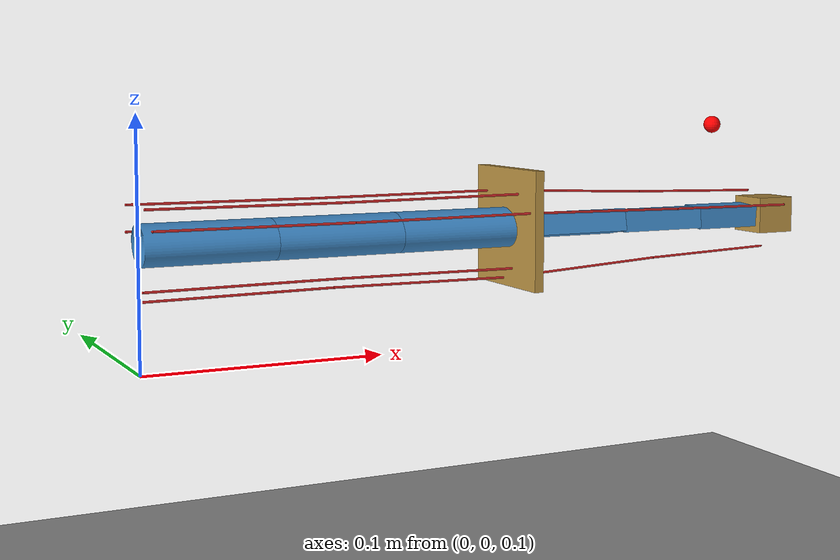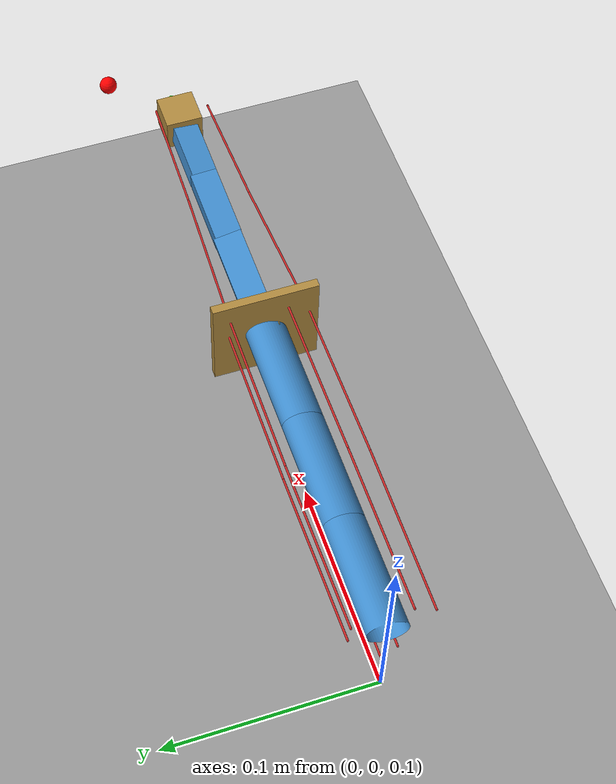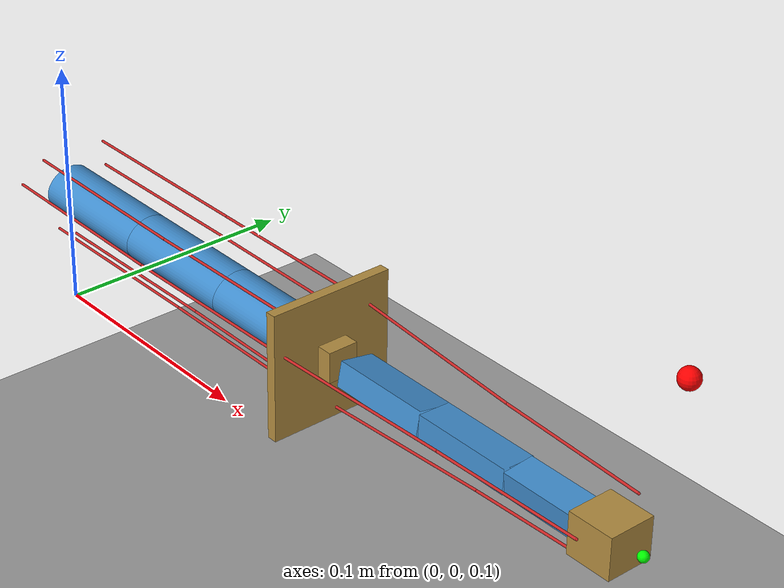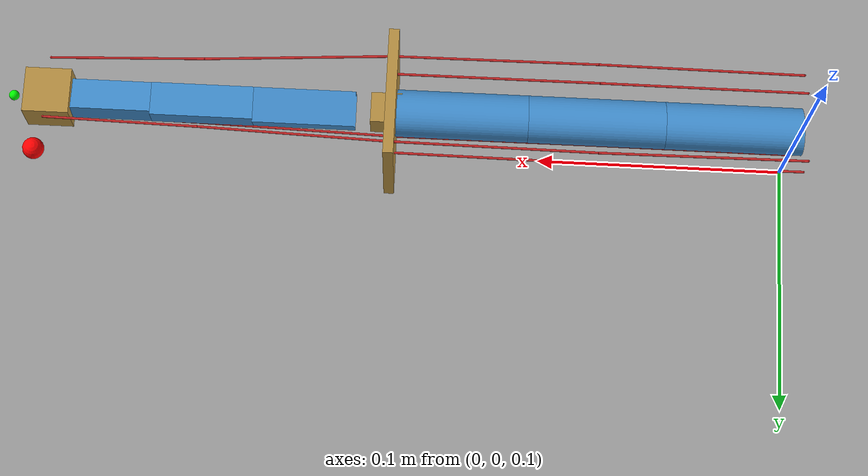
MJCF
<?xml version='1.0' encoding='utf-8'?>
<mujoco model="serial_tendon_family"><compiler angle="radian" autolimits="true" /><option timestep="0.0005" gravity="0 0 -9.8100000000000005" integrator="implicitfast" /><default><joint limited="false" /><geom contype="1" conaffinity="2" friction="0 0 0" /></default><asset><mesh name="near_cell_0_section" vertex="0 -0.01 2.4175425728033171e-18 0 -0.0099144486137381048 -0.001044209537760411 0 -0.0096592582628906853 -0.0020705523608201648 0 -0.0092387953251128682 -0.0030614674589207165 0 -0.0086602540378443883 -0.0039999999999999966 0 -0.0079335334029123541 -0.0048700914320697628 0 -0.0070710678118654779 -0.0056568542494923792 0 -0.0060876142900872076 -0.0063468267223298807 0 -0.0050000000000000018 -0.006928203230275507 0 -0.0038268343236509002 -0.0073910362600902932 0 -0.0025881904510252113 -0.0077274066103125453 0 -0.0013052619222005189 -0.0079315588909904828 0 -2.3207556918032139e-18 -0.0080000000000000002 0 0.0013052619222005124 -0.0079315588909904845 0 0.0025881904510252048 -0.0077274066103125471 0 0.0038268343236508942 -0.0073910362600902958 0 0.0049999999999999958 -0.0069282032302755113 0 0.0060876142900872024 -0.0063468267223298841 0 0.0070710678118654727 -0.0056568542494923818 0 0.0079335334029123506 -0.0048700914320697689 0 0.0086602540378443848 -0.0040000000000000044 0 0.0092387953251128682 -0.0030614674589207209 0 0.0096592582628906801 -0.0020705523608201704 0 0.0099144486137381048 -0.0010442095377604184 0 0.01 -3.2323185216375012e-18 0 0.0099144486137381048 0.0010442095377604095 0 0.0096592582628906836 0.0020705523608201613 0 0.00923879532511287 0.0030614674589207122 0 0.00866025403784439 0.0039999999999999949 0 0.0079335334029123541 0.0048700914320697619 0 0.0070710678118654797 0.0056568542494923758 0 0.0060876142900872102 0.0063468267223298781 0 0.0050000000000000062 0.0069282032302755078 0 0.003826834323650905 0.0073910362600902915 0 0.0025881904510252165 0.0077274066103125436 0 0.0013052619222005269 0.0079315588909904828 0 3.6217982987858192e-18 0.0080000000000000002 0 -0.0013052619222005107 0.0079315588909904845 0 -0.0025881904510252013 0.0077274066103125488 0 -0.0038268343236508911 0.0073910362600902967 0 -0.0049999999999999914 0.006928203230275513 0 -0.0060876142900871981 0.0063468267223298876 0 -0.0070710678118654719 0.0056568542494923836 0 -0.0079335334029123471 0.0048700914320697697 0 -0.0086602540378443848 0.0040000000000000053 0 -0.0092387953251128647 0.0030614674589207252 0 -0.0096592582628906819 0.0020705523608201748 0 -0.0099144486137381013 0.0010442095377604223 0.053333333333333337 -0.01 2.4175425728033171e-18 0.053333333333333337 -0.0099144486137381048 -0.001044209537760411 0.053333333333333337 -0.0096592582628906853 -0.0020705523608201648 0.053333333333333337 -0.0092387953251128682 -0.0030614674589207165 0.053333333333333337 -0.0086602540378443883 -0.0039999999999999966 0.053333333333333337 -0.0079335334029123541 -0.0048700914320697628 0.053333333333333337 -0.0070710678118654779 -0.0056568542494923792 0.053333333333333337 -0.0060876142900872076 -0.0063468267223298807 0.053333333333333337 -0.0050000000000000018 -0.006928203230275507 0.053333333333333337 -0.0038268343236509002 -0.0073910362600902932 0.053333333333333337 -0.0025881904510252113 -0.0077274066103125453 0.053333333333333337 -0.0013052619222005189 -0.0079315588909904828 0.053333333333333337 -2.3207556918032139e-18 -0.0080000000000000002 0.053333333333333337 0.0013052619222005124 -0.0079315588909904845 0.053333333333333337 0.0025881904510252048 -0.0077274066103125471 0.053333333333333337 0.0038268343236508942 -0.0073910362600902958 0.053333333333333337 0.0049999999999999958 -0.0069282032302755113 0.053333333333333337 0.0060876142900872024 -0.0063468267223298841 0.053333333333333337 0.0070710678118654727 -0.0056568542494923818 0.053333333333333337 0.0079335334029123506 -0.0048700914320697689 0.053333333333333337 0.0086602540378443848 -0.0040000000000000044 0.053333333333333337 0.0092387953251128682 -0.0030614674589207209 0.053333333333333337 0.0096592582628906801 -0.0020705523608201704 0.053333333333333337 0.0099144486137381048 -0.0010442095377604184 0.053333333333333337 0.01 -3.2323185216375012e-18 0.053333333333333337 0.0099144486137381048 0.0010442095377604095 0.053333333333333337 0.0096592582628906836 0.0020705523608201613 0.053333333333333337 0.00923879532511287 0.0030614674589207122 0.053333333333333337 0.00866025403784439 0.0039999999999999949 0.053333333333333337 0.0079335334029123541 0.0048700914320697619 0.053333333333333337 0.0070710678118654797 0.0056568542494923758 0.053333333333333337 0.0060876142900872102 0.0063468267223298781 0.053333333333333337 0.0050000000000000062 0.0069282032302755078 0.053333333333333337 0.003826834323650905 0.0073910362600902915 0.053333333333333337 0.0025881904510252165 0.0077274066103125436 0.053333333333333337 0.0013052619222005269 0.0079315588909904828 0.053333333333333337 3.6217982987858192e-18 0.0080000000000000002 0.053333333333333337 -0.0013052619222005107 0.0079315588909904845 0.053333333333333337 -0.0025881904510252013 0.0077274066103125488 0.053333333333333337 -0.0038268343236508911 0.0073910362600902967 0.053333333333333337 -0.0049999999999999914 0.006928203230275513 0.053333333333333337 -0.0060876142900871981 0.0063468267223298876 0.053333333333333337 -0.0070710678118654719 0.0056568542494923836 0.053333333333333337 -0.0079335334029123471 0.0048700914320697697 0.053333333333333337 -0.0086602540378443848 0.0040000000000000053 0.053333333333333337 -0.0092387953251128647 0.0030614674589207252 0.053333333333333337 -0.0096592582628906819 0.0020705523608201748 0.053333333333333337 -0.0099144486137381013 0.0010442095377604223" face="0 1 49 0 49 48 1 2 50 1 50 49 2 3 51 2 51 50 3 4 52 3 52 51 4 5 53 4 53 52 5 6 54 5 54 53 6 7 55 6 55 54 7 8 56 7 56 55 8 9 57 8 57 56 9 10 58 9 58 57 10 11 59 10 59 58 11 12 60 11 60 59 12 13 61 12 61 60 13 14 62 13 62 61 14 15 63 14 63 62 15 16 64 15 64 63 16 17 65 16 65 64 17 18 66 17 66 65 18 19 67 18 67 66 19 20 68 19 68 67 20 21 69 20 69 68 21 22 70 21 70 69 22 23 71 22 71 70 23 24 72 23 72 71 24 25 73 24 73 72 25 26 74 25 74 73 26 27 75 26 75 74 27 28 76 27 76 75 28 29 77 28 77 76 29 30 78 29 78 77 30 31 79 30 79 78 31 32 80 31 80 79 32 33 81 32 81 80 33 34 82 33 82 81 34 35 83 34 83 82 35 36 84 35 84 83 36 37 85 36 85 84 37 38 86 37 86 85 38 39 87 38 87 86 39 40 88 39 88 87 40 41 89 40 89 88 41 42 90 41 90 89 42 43 91 42 91 90 43 44 92 43 92 91 44 45 93 44 93 92 45 46 94 45 94 93 46 47 95 46 95 94 47 0 48 47 48 95" /><mesh name="near_cell_1_section" vertex="0 -0.01 2.4175425728033171e-18 0 -0.0099144486137381048 -0.001044209537760411 0 -0.0096592582628906853 -0.0020705523608201648 0 -0.0092387953251128682 -0.0030614674589207165 0 -0.0086602540378443883 -0.0039999999999999966 0 -0.0079335334029123541 -0.0048700914320697628 0 -0.0070710678118654779 -0.0056568542494923792 0 -0.0060876142900872076 -0.0063468267223298807 0 -0.0050000000000000018 -0.006928203230275507 0 -0.0038268343236509002 -0.0073910362600902932 0 -0.0025881904510252113 -0.0077274066103125453 0 -0.0013052619222005189 -0.0079315588909904828 0 -2.3207556918032139e-18 -0.0080000000000000002 0 0.0013052619222005124 -0.0079315588909904845 0 0.0025881904510252048 -0.0077274066103125471 0 0.0038268343236508942 -0.0073910362600902958 0 0.0049999999999999958 -0.0069282032302755113 0 0.0060876142900872024 -0.0063468267223298841 0 0.0070710678118654727 -0.0056568542494923818 0 0.0079335334029123506 -0.0048700914320697689 0 0.0086602540378443848 -0.0040000000000000044 0 0.0092387953251128682 -0.0030614674589207209 0 0.0096592582628906801 -0.0020705523608201704 0 0.0099144486137381048 -0.0010442095377604184 0 0.01 -3.2323185216375012e-18 0 0.0099144486137381048 0.0010442095377604095 0 0.0096592582628906836 0.0020705523608201613 0 0.00923879532511287 0.0030614674589207122 0 0.00866025403784439 0.0039999999999999949 0 0.0079335334029123541 0.0048700914320697619 0 0.0070710678118654797 0.0056568542494923758 0 0.0060876142900872102 0.0063468267223298781 0 0.0050000000000000062 0.0069282032302755078 0 0.003826834323650905 0.0073910362600902915 0 0.0025881904510252165 0.0077274066103125436 0 0.0013052619222005269 0.0079315588909904828 0 3.6217982987858192e-18 0.0080000000000000002 0 -0.0013052619222005107 0.0079315588909904845 0 -0.0025881904510252013 0.0077274066103125488 0 -0.0038268343236508911 0.0073910362600902967 0 -0.0049999999999999914 0.006928203230275513 0 -0.0060876142900871981 0.0063468267223298876 0 -0.0070710678118654719 0.0056568542494923836 0 -0.0079335334029123471 0.0048700914320697697 0 -0.0086602540378443848 0.0040000000000000053 0 -0.0092387953251128647 0.0030614674589207252 0 -0.0096592582628906819 0.0020705523608201748 0 -0.0099144486137381013 0.0010442095377604223 0.053333333333333337 -0.01 2.4175425728033171e-18 0.053333333333333337 -0.0099144486137381048 -0.001044209537760411 0.053333333333333337 -0.0096592582628906853 -0.0020705523608201648 0.053333333333333337 -0.0092387953251128682 -0.0030614674589207165 0.053333333333333337 -0.0086602540378443883 -0.0039999999999999966 0.053333333333333337 -0.0079335334029123541 -0.0048700914320697628 0.053333333333333337 -0.0070710678118654779 -0.0056568542494923792 0.053333333333333337 -0.0060876142900872076 -0.0063468267223298807 0.053333333333333337 -0.0050000000000000018 -0.006928203230275507 0.053333333333333337 -0.0038268343236509002 -0.0073910362600902932 0.053333333333333337 -0.0025881904510252113 -0.0077274066103125453 0.053333333333333337 -0.0013052619222005189 -0.0079315588909904828 0.053333333333333337 -2.3207556918032139e-18 -0.0080000000000000002 0.053333333333333337 0.0013052619222005124 -0.0079315588909904845 0.053333333333333337 0.0025881904510252048 -0.0077274066103125471 0.053333333333333337 0.0038268343236508942 -0.0073910362600902958 0.053333333333333337 0.0049999999999999958 -0.0069282032302755113 0.053333333333333337 0.0060876142900872024 -0.0063468267223298841 0.053333333333333337 0.0070710678118654727 -0.0056568542494923818 0.053333333333333337 0.0079335334029123506 -0.0048700914320697689 0.053333333333333337 0.0086602540378443848 -0.0040000000000000044 0.053333333333333337 0.0092387953251128682 -0.0030614674589207209 0.053333333333333337 0.0096592582628906801 -0.0020705523608201704 0.053333333333333337 0.0099144486137381048 -0.0010442095377604184 0.053333333333333337 0.01 -3.2323185216375012e-18 0.053333333333333337 0.0099144486137381048 0.0010442095377604095 0.053333333333333337 0.0096592582628906836 0.0020705523608201613 0.053333333333333337 0.00923879532511287 0.0030614674589207122 0.053333333333333337 0.00866025403784439 0.0039999999999999949 0.053333333333333337 0.0079335334029123541 0.0048700914320697619 0.053333333333333337 0.0070710678118654797 0.0056568542494923758 0.053333333333333337 0.0060876142900872102 0.0063468267223298781 0.053333333333333337 0.0050000000000000062 0.0069282032302755078 0.053333333333333337 0.003826834323650905 0.0073910362600902915 0.053333333333333337 0.0025881904510252165 0.0077274066103125436 0.053333333333333337 0.0013052619222005269 0.0079315588909904828 0.053333333333333337 3.6217982987858192e-18 0.0080000000000000002 0.053333333333333337 -0.0013052619222005107 0.0079315588909904845 0.053333333333333337 -0.0025881904510252013 0.0077274066103125488 0.053333333333333337 -0.0038268343236508911 0.0073910362600902967 0.053333333333333337 -0.0049999999999999914 0.006928203230275513 0.053333333333333337 -0.0060876142900871981 0.0063468267223298876 0.053333333333333337 -0.0070710678118654719 0.0056568542494923836 0.053333333333333337 -0.0079335334029123471 0.0048700914320697697 0.053333333333333337 -0.0086602540378443848 0.0040000000000000053 0.053333333333333337 -0.0092387953251128647 0.0030614674589207252 0.053333333333333337 -0.0096592582628906819 0.0020705523608201748 0.053333333333333337 -0.0099144486137381013 0.0010442095377604223" face="0 1 49 0 49 48 1 2 50 1 50 49 2 3 51 2 51 50 3 4 52 3 52 51 4 5 53 4 53 52 5 6 54 5 54 53 6 7 55 6 55 54 7 8 56 7 56 55 8 9 57 8 57 56 9 10 58 9 58 57 10 11 59 10 59 58 11 12 60 11 60 59 12 13 61 12 61 60 13 14 62 13 62 61 14 15 63 14 63 62 15 16 64 15 64 63 16 17 65 16 65 64 17 18 66 17 66 65 18 19 67 18 67 66 19 20 68 19 68 67 20 21 69 20 69 68 21 22 70 21 70 69 22 23 71 22 71 70 23 24 72 23 72 71 24 25 73 24 73 72 25 26 74 25 74 73 26 27 75 26 75 74 27 28 76 27 76 75 28 29 77 28 77 76 29 30 78 29 78 77 30 31 79 30 79 78 31 32 80 31 80 79 32 33 81 32 81 80 33 34 82 33 82 81 34 35 83 34 83 82 35 36 84 35 84 83 36 37 85 36 85 84 37 38 86 37 86 85 38 39 87 38 87 86 39 40 88 39 88 87 40 41 89 40 89 88 41 42 90 41 90 89 42 43 91 42 91 90 43 44 92 43 92 91 44 45 93 44 93 92 45 46 94 45 94 93 46 47 95 46 95 94 47 0 48 47 48 95" /><mesh name="near_cell_2_section" vertex="0 -0.01 2.4175425728033171e-18 0 -0.0099144486137381048 -0.001044209537760411 0 -0.0096592582628906853 -0.0020705523608201648 0 -0.0092387953251128682 -0.0030614674589207165 0 -0.0086602540378443883 -0.0039999999999999966 0 -0.0079335334029123541 -0.0048700914320697628 0 -0.0070710678118654779 -0.0056568542494923792 0 -0.0060876142900872076 -0.0063468267223298807 0 -0.0050000000000000018 -0.006928203230275507 0 -0.0038268343236509002 -0.0073910362600902932 0 -0.0025881904510252113 -0.0077274066103125453 0 -0.0013052619222005189 -0.0079315588909904828 0 -2.3207556918032139e-18 -0.0080000000000000002 0 0.0013052619222005124 -0.0079315588909904845 0 0.0025881904510252048 -0.0077274066103125471 0 0.0038268343236508942 -0.0073910362600902958 0 0.0049999999999999958 -0.0069282032302755113 0 0.0060876142900872024 -0.0063468267223298841 0 0.0070710678118654727 -0.0056568542494923818 0 0.0079335334029123506 -0.0048700914320697689 0 0.0086602540378443848 -0.0040000000000000044 0 0.0092387953251128682 -0.0030614674589207209 0 0.0096592582628906801 -0.0020705523608201704 0 0.0099144486137381048 -0.0010442095377604184 0 0.01 -3.2323185216375012e-18 0 0.0099144486137381048 0.0010442095377604095 0 0.0096592582628906836 0.0020705523608201613 0 0.00923879532511287 0.0030614674589207122 0 0.00866025403784439 0.0039999999999999949 0 0.0079335334029123541 0.0048700914320697619 0 0.0070710678118654797 0.0056568542494923758 0 0.0060876142900872102 0.0063468267223298781 0 0.0050000000000000062 0.0069282032302755078 0 0.003826834323650905 0.0073910362600902915 0 0.0025881904510252165 0.0077274066103125436 0 0.0013052619222005269 0.0079315588909904828 0 3.6217982987858192e-18 0.0080000000000000002 0 -0.0013052619222005107 0.0079315588909904845 0 -0.0025881904510252013 0.0077274066103125488 0 -0.0038268343236508911 0.0073910362600902967 0 -0.0049999999999999914 0.006928203230275513 0 -0.0060876142900871981 0.0063468267223298876 0 -0.0070710678118654719 0.0056568542494923836 0 -0.0079335334029123471 0.0048700914320697697 0 -0.0086602540378443848 0.0040000000000000053 0 -0.0092387953251128647 0.0030614674589207252 0 -0.0096592582628906819 0.0020705523608201748 0 -0.0099144486137381013 0.0010442095377604223 0.053333333333333337 -0.01 2.4175425728033171e-18 0.053333333333333337 -0.0099144486137381048 -0.001044209537760411 0.053333333333333337 -0.0096592582628906853 -0.0020705523608201648 0.053333333333333337 -0.0092387953251128682 -0.0030614674589207165 0.053333333333333337 -0.0086602540378443883 -0.0039999999999999966 0.053333333333333337 -0.0079335334029123541 -0.0048700914320697628 0.053333333333333337 -0.0070710678118654779 -0.0056568542494923792 0.053333333333333337 -0.0060876142900872076 -0.0063468267223298807 0.053333333333333337 -0.0050000000000000018 -0.006928203230275507 0.053333333333333337 -0.0038268343236509002 -0.0073910362600902932 0.053333333333333337 -0.0025881904510252113 -0.0077274066103125453 0.053333333333333337 -0.0013052619222005189 -0.0079315588909904828 0.053333333333333337 -2.3207556918032139e-18 -0.0080000000000000002 0.053333333333333337 0.0013052619222005124 -0.0079315588909904845 0.053333333333333337 0.0025881904510252048 -0.0077274066103125471 0.053333333333333337 0.0038268343236508942 -0.0073910362600902958 0.053333333333333337 0.0049999999999999958 -0.0069282032302755113 0.053333333333333337 0.0060876142900872024 -0.0063468267223298841 0.053333333333333337 0.0070710678118654727 -0.0056568542494923818 0.053333333333333337 0.0079335334029123506 -0.0048700914320697689 0.053333333333333337 0.0086602540378443848 -0.0040000000000000044 0.053333333333333337 0.0092387953251128682 -0.0030614674589207209 0.053333333333333337 0.0096592582628906801 -0.0020705523608201704 0.053333333333333337 0.0099144486137381048 -0.0010442095377604184 0.053333333333333337 0.01 -3.2323185216375012e-18 0.053333333333333337 0.0099144486137381048 0.0010442095377604095 0.053333333333333337 0.0096592582628906836 0.0020705523608201613 0.053333333333333337 0.00923879532511287 0.0030614674589207122 0.053333333333333337 0.00866025403784439 0.0039999999999999949 0.053333333333333337 0.0079335334029123541 0.0048700914320697619 0.053333333333333337 0.0070710678118654797 0.0056568542494923758 0.053333333333333337 0.0060876142900872102 0.0063468267223298781 0.053333333333333337 0.0050000000000000062 0.0069282032302755078 0.053333333333333337 0.003826834323650905 0.0073910362600902915 0.053333333333333337 0.0025881904510252165 0.0077274066103125436 0.053333333333333337 0.0013052619222005269 0.0079315588909904828 0.053333333333333337 3.6217982987858192e-18 0.0080000000000000002 0.053333333333333337 -0.0013052619222005107 0.0079315588909904845 0.053333333333333337 -0.0025881904510252013 0.0077274066103125488 0.053333333333333337 -0.0038268343236508911 0.0073910362600902967 0.053333333333333337 -0.0049999999999999914 0.006928203230275513 0.053333333333333337 -0.0060876142900871981 0.0063468267223298876 0.053333333333333337 -0.0070710678118654719 0.0056568542494923836 0.053333333333333337 -0.0079335334029123471 0.0048700914320697697 0.053333333333333337 -0.0086602540378443848 0.0040000000000000053 0.053333333333333337 -0.0092387953251128647 0.0030614674589207252 0.053333333333333337 -0.0096592582628906819 0.0020705523608201748 0.053333333333333337 -0.0099144486137381013 0.0010442095377604223" face="0 1 49 0 49 48 1 2 50 1 50 49 2 3 51 2 51 50 3 4 52 3 52 51 4 5 53 4 53 52 5 6 54 5 54 53 6 7 55 6 55 54 7 8 56 7 56 55 8 9 57 8 57 56 9 10 58 9 58 57 10 11 59 10 59 58 11 12 60 11 60 59 12 13 61 12 61 60 13 14 62 13 62 61 14 15 63 14 63 62 15 16 64 15 64 63 16 17 65 16 65 64 17 18 66 17 66 65 18 19 67 18 67 66 19 20 68 19 68 67 20 21 69 20 69 68 21 22 70 21 70 69 22 23 71 22 71 70 23 24 72 23 72 71 24 25 73 24 73 72 25 26 74 25 74 73 26 27 75 26 75 74 27 28 76 27 76 75 28 29 77 28 77 76 29 30 78 29 78 77 30 31 79 30 79 78 31 32 80 31 80 79 32 33 81 32 81 80 33 34 82 33 82 81 34 35 83 34 83 82 35 36 84 35 84 83 36 37 85 36 85 84 37 38 86 37 86 85 38 39 87 38 87 86 39 40 88 39 88 87 40 41 89 40 89 88 41 42 90 41 90 89 42 43 91 42 91 90 43 44 92 43 92 91 44 45 93 44 93 92 45 46 94 45 94 93 46 47 95 46 95 94 47 0 48 47 48 95" /><mesh name="far_cell_0_section" vertex="0 0.0068333333333333345 0.0049166666666666655 0 -0.0068333333333333336 0.0049166666666666673 0 -0.0068333333333333345 -0.0049166666666666655 0 0.0068333333333333336 -0.0049166666666666673 0.040000000000000001 0.0068333333333333345 0.0049166666666666655 0.040000000000000001 -0.0068333333333333336 0.0049166666666666673 0.040000000000000001 -0.0068333333333333345 -0.0049166666666666655 0.040000000000000001 0.0068333333333333336 -0.0049166666666666673" face="0 1 5 0 5 4 1 2 6 1 6 5 2 3 7 2 7 6 3 0 4 3 4 7" /><mesh name="far_cell_1_section" vertex="0 0.0065000000000000006 0.004749999999999999 0 -0.0065000000000000006 0.0047500000000000007 0 -0.0065000000000000006 -0.004749999999999999 0 0.0065000000000000006 -0.0047500000000000007 0.040000000000000001 0.0065000000000000006 0.004749999999999999 0.040000000000000001 -0.0065000000000000006 0.0047500000000000007 0.040000000000000001 -0.0065000000000000006 -0.004749999999999999 0.040000000000000001 0.0065000000000000006 -0.0047500000000000007" face="0 1 5 0 5 4 1 2 6 1 6 5 2 3 7 2 7 6 3 0 4 3 4 7" /><mesh name="far_cell_2_section" vertex="0 0.0061666666666666658 0.0045833333333333342 0 -0.0061666666666666684 0.0045833333333333325 0 -0.0061666666666666658 -0.0045833333333333342 0 0.0061666666666666684 -0.0045833333333333325 0.040000000000000001 0.0061666666666666658 0.0045833333333333342 0.040000000000000001 -0.0061666666666666684 0.0045833333333333325 0.040000000000000001 -0.0061666666666666658 -0.0045833333333333342 0.040000000000000001 0.0061666666666666684 -0.0045833333333333325" face="0 1 5 0 5 4 1 2 6 1 6 5 2 3 7 2 7 6 3 0 4 3 4 7" /></asset><worldbody><light pos="0 -0.3 1" dir="0 0 -1" /><geom name="floor" type="plane" pos="0 0 -0.02" size="1 1 .01" contype="2" conaffinity="1" rgba=".6 .6 .6 1" /><site name="task_target" pos="0.28999999999999998 0.035000000000000003 0.19" size=".004" rgba="1 0 0 1" /><body name="fixed_base" pos="0 0 0.14999999999999999" quat="1 0 0 0"><body name="near_cell_0" pos="0 0 0" quat="-0.17410813759359606 0.98472653890493345 0 0"><inertial pos="0.026666666666666668 0 0" mass="0.014744541520848097" fullinertia="6.0452620235477198e-07 3.7309150989049705e-06 3.8636159725926034e-06 0 0 -8.3596143144934511e-24" /><joint name="near_cell_0_y" type="hinge" axis="0 1 0" stiffness="0.6031857894892404" damping="0.009375" springref="0.0" /><joint name="near_cell_0_z" type="hinge" axis="0 0 1" stiffness="0.9424777960769382" damping="0.013125" springref="0.0" /><geom name="near_cell_0_shape" type="mesh" mesh="near_cell_0_section" rgba=".25 .55 .8 1" /><body name="near_cell_1" pos="0.053333333333333337 0 0" quat="1 0 0 0"><inertial pos="0.026666666666666668 0 0" mass="0.014744541520848097" fullinertia="6.0452620235477198e-07 3.7309150989049705e-06 3.8636159725926034e-06 0 0 -8.3596143144934511e-24" /><joint name="near_cell_1_y" type="hinge" axis="0 1 0" stiffness="0.6031857894892404" damping="0.009375" springref="0.0" /><joint name="near_cell_1_z" type="hinge" axis="0 0 1" stiffness="0.9424777960769382" damping="0.013125" springref="0.0" /><geom name="near_cell_1_shape" type="mesh" mesh="near_cell_1_section" rgba=".25 .55 .8 1" /><body name="near_cell_2" pos="0.053333333333333337 0 0" quat="1 0 0 0"><inertial pos="0.026666666666666668 0 0" mass="0.014744541520848097" fullinertia="6.0452620235477198e-07 3.7309150989049705e-06 3.8636159725926034e-06 0 0 -8.3596143144934511e-24" /><joint name="near_cell_2_y" type="hinge" axis="0 1 0" stiffness="0.6031857894892404" damping="0.009375" springref="0.0" /><joint name="near_cell_2_z" type="hinge" axis="0 0 1" stiffness="0.9424777960769382" damping="0.013125" springref="0.0" /><geom name="near_cell_2_shape" type="mesh" mesh="near_cell_2_section" rgba=".25 .55 .8 1" /><body name="mid_guide" pos="0.053333333333333337 0 0" quat="0.17410813759359606 0.98472653890493345 0 0"><inertial pos="0 0 0" mass="0.002" fullinertia="3.9999999999999998e-07 1.9999999999999999e-07 1.9999999999999999e-07 0 0 0" /><geom name="mid_guide_shape" type="box" size="0.002 0.025000000000000001 0.025000000000000001" rgba=".7 .55 .25 1" /><body name="connector" pos="0.002 0 0" quat="1 0 0 0"><inertial pos="0.0060000000000000001 0 0" mass="0.003" fullinertia="4.9999999999999998e-08 7.0000000000000005e-08 7.0000000000000005e-08 0 0 0" /><geom name="connector_shape" type="box" size="0.0060000000000000001 0.0060000000000000001 0.0060000000000000001" rgba=".7 .55 .25 1" /><body name="far_cell_0" pos="0.012 0 0" quat="0.091538344819926287 0.99580155223198374 0 0"><inertial pos="0.02 0 0" mass="0.005644333333333334" fullinertia="1.3333430941358025e-07 7.9805908410493833e-07 8.4043078086419753e-07 0 0 3.1041354542179061e-24" /><joint name="far_cell_0_y" type="hinge" axis="0 1 0" stiffness="0.16243323688271605" damping="0.007499999999999999" springref="0.0" /><joint name="far_cell_0_z" type="hinge" axis="0 0 1" stiffness="0.31376072530864196" damping="0.01" springref="0.0" /><geom name="far_cell_0_shape" type="mesh" mesh="far_cell_0_section" rgba=".25 .55 .8 1" /><body name="far_cell_1" pos="0.040000000000000001 0 0" quat="0.99777860070112223 0.066617294923392967 0 0"><inertial pos="0.02 0 0" mass="0.005187000000000001" fullinertia="1.1206081250000005e-07 7.3061056250000019e-07 7.6465025000000023e-07 0 0 2.1023702554748058e-24" /><joint name="far_cell_1_y" type="hinge" axis="0 1 0" stiffness="0.13932343750000004" damping="0.007499999999999999" springref="0.0" /><joint name="far_cell_1_z" type="hinge" axis="0 0 1" stiffness="0.26089375000000015" damping="0.01" springref="0.0" /><geom name="far_cell_1_shape" type="mesh" mesh="far_cell_1_section" rgba=".25 .55 .8 1" /><body name="far_cell_2" pos="0.040000000000000001 0 0" quat="0.99777860070112234 0.066617294923392883 0 0"><inertial pos="0.02 0 0" mass="0.004748333333333334" fullinertia="9.3438846450617271e-08 6.6636043595679024e-07 6.9330063271604953e-07 0 0 -4.3172958843147522e-24" /><joint name="far_cell_2_y" type="hinge" axis="0 1 0" stiffness="0.11874758873456791" damping="0.007499999999999999" springref="0.0" /><joint name="far_cell_2_z" type="hinge" axis="0 0 1" stiffness="0.2149625771604938" damping="0.01" springref="0.0" /><geom name="far_cell_2_shape" type="mesh" mesh="far_cell_2_section" rgba=".25 .55 .8 1" /><body name="payload" pos="0.040000000000000001 0 0" quat="0.041654611386019003 0.99913207002391813 0 0"><inertial pos="0.0070000000000000001 0.001 -0.002" mass="0.01" fullinertia="5.9999999999999997e-07 7.9999999999999996e-07 8.9999999999999996e-07 9.9999999999999995e-08 0 9.9999999999999995e-08" /><geom name="payload_shape" type="box" size="0.0089999999999999993 0.0089999999999999993 0.0080000000000000002" rgba=".7 .55 .25 1" /><site name="tip_site" pos="0.014 0 0" size=".002" rgba="0 1 0 1" /></body><site name="far_t0_point_4" pos="0.040000000000000001 -0.012563485017184052 -0.0089061127447945428" size="0.0005" rgba=".8 .15 .15 1" /><site name="far_t1_point_4" pos="0.040000000000000001 0.014030466412861601 -0.0063487016182493927" size="0.0005" rgba=".8 .15 .15 1" /><site name="far_t2_point_4" pos="0.040000000000000001 -6.5876167835073954e-05 0.015399859100995415" size="0.0005" rgba=".8 .15 .15 1" /></body><site name="far_t0_point_3" pos="0.02 -0.012877724092179249 -0.01199684217641068" size="0.0005" rgba=".8 .15 .15 1" /><site name="far_t1_point_3" pos="0.02 0.016857055380934387 -0.0050596130172287871" size="0.0005" rgba=".8 .15 .15 1" /><site name="far_t2_point_3" pos="0.02 -0.0024143171729759708 0.017433619033014155" size="0.0005" rgba=".8 .15 .15 1" /></body></body></body><site name="near_t0_point_2" pos="0 0.017641198401142349 0.0035760479543111017" size="0.0005" rgba=".8 .15 .15 1" /><site name="near_t1_point_2" pos="0 -0.010593020110596225 0.01455293526875262" size="0.0005" rgba=".8 .15 .15 1" /><site name="near_t2_point_2" pos="0 -0.0055319916596115477 -0.01712883733001129" size="0.0005" rgba=".8 .15 .15 1" /><site name="far_t0_point_2" pos="0 0.016826528120258744 0.014172789119229201" size="0.0005" rgba=".8 .15 .15 1" /><site name="far_t1_point_2" pos="0 -0.020728891494710477 0.0073697393034299116" size="0.0005" rgba=".8 .15 .15 1" /><site name="far_t2_point_2" pos="0 0.0019249776356678207 -0.021915621394388494" size="0.0005" rgba=".8 .15 .15 1" /></body></body><site name="near_t0_point_1" pos="0.026666666666666668 -0.018258242644760895 0.0029721374881473465" size="0.0005" rgba=".8 .15 .15 1" /><site name="near_t1_point_1" pos="0.026666666666666668 0.0054088533518682515 -0.017001804446164032" size="0.0005" rgba=".8 .15 .15 1" /><site name="near_t2_point_1" pos="0.026666666666666668 0.011049737614900827 0.013653836473624812" size="0.0005" rgba=".8 .15 .15 1" /><site name="far_t0_point_1" pos="0.026666666666666668 -0.020994596574250877 -0.0069712524351278737" size="0.0005" rgba=".8 .15 .15 1" /><site name="far_t1_point_1" pos="0.026666666666666668 0.017605064263631842 -0.014036372230221408" size="0.0005" rgba=".8 .15 .15 1" /><site name="far_t2_point_1" pos="0.026666666666666668 0.0054268543617033644 0.020649201350284706" size="0.0005" rgba=".8 .15 .15 1" /></body></body><site name="near_t0_point_0" pos="0 0.017641198401142349 0.0035760479543111017" size="0.0005" rgba=".8 .15 .15 1" /><site name="near_t1_point_0" pos="0 -0.010593020110596225 0.01455293526875262" size="0.0005" rgba=".8 .15 .15 1" /><site name="near_t2_point_0" pos="0 -0.0055319916596115477 -0.01712883733001129" size="0.0005" rgba=".8 .15 .15 1" /><site name="far_t0_point_0" pos="0 0.016826528120258744 0.014172789119229201" size="0.0005" rgba=".8 .15 .15 1" /><site name="far_t1_point_0" pos="0 -0.020728891494710477 0.0073697393034299116" size="0.0005" rgba=".8 .15 .15 1" /><site name="far_t2_point_0" pos="0 0.0019249776356678207 -0.021915621394388494" size="0.0005" rgba=".8 .15 .15 1" /></body></worldbody><tendon><spatial name="near_t0" width="0.0005" rgba=".8 .15 .15 1"><site site="near_t0_point_0" /><site site="near_t0_point_1" /><site site="near_t0_point_2" /></spatial><spatial name="near_t1" width="0.0005" rgba=".8 .15 .15 1"><site site="near_t1_point_0" /><site site="near_t1_point_1" /><site site="near_t1_point_2" /></spatial><spatial name="near_t2" width="0.0005" rgba=".8 .15 .15 1"><site site="near_t2_point_0" /><site site="near_t2_point_1" /><site site="near_t2_point_2" /></spatial><spatial name="far_t0" width="0.0005" rgba=".8 .15 .15 1"><site site="far_t0_point_0" /><site site="far_t0_point_1" /><site site="far_t0_point_2" /><site site="far_t0_point_3" /><site site="far_t0_point_4" /></spatial><spatial name="far_t1" width="0.0005" rgba=".8 .15 .15 1"><site site="far_t1_point_0" /><site site="far_t1_point_1" /><site site="far_t1_point_2" /><site site="far_t1_point_3" /><site site="far_t1_point_4" /></spatial><spatial name="far_t2" width="0.0005" rgba=".8 .15 .15 1"><site site="far_t2_point_0" /><site site="far_t2_point_1" /><site site="far_t2_point_2" /><site site="far_t2_point_3" /><site site="far_t2_point_4" /></spatial></tendon><actuator><general name="near_t0_length_servo" tendon="near_t0" gainprm="900.0" biastype="affine" biasprm="0 -900 0" forcelimited="true" forcerange="-8 0" /><general name="near_t1_length_servo" tendon="near_t1" gainprm="900.0" biastype="affine" biasprm="0 -900 0" forcelimited="true" forcerange="-8 0" /><general name="near_t2_length_servo" tendon="near_t2" gainprm="900.0" biastype="affine" biasprm="0 -900 0" forcelimited="true" forcerange="-8 0" /><general name="far_t0_length_servo" tendon="far_t0" gainprm="900.0" biastype="affine" biasprm="0 -900 0" forcelimited="true" forcerange="-8 0" /><general name="far_t1_length_servo" tendon="far_t1" gainprm="900.0" biastype="affine" biasprm="0 -900 0" forcelimited="true" forcerange="-8 0" /><general name="far_t2_length_servo" tendon="far_t2" gainprm="900.0" biastype="affine" biasprm="0 -900 0" forcelimited="true" forcerange="-8 0" /></actuator></mujoco>
